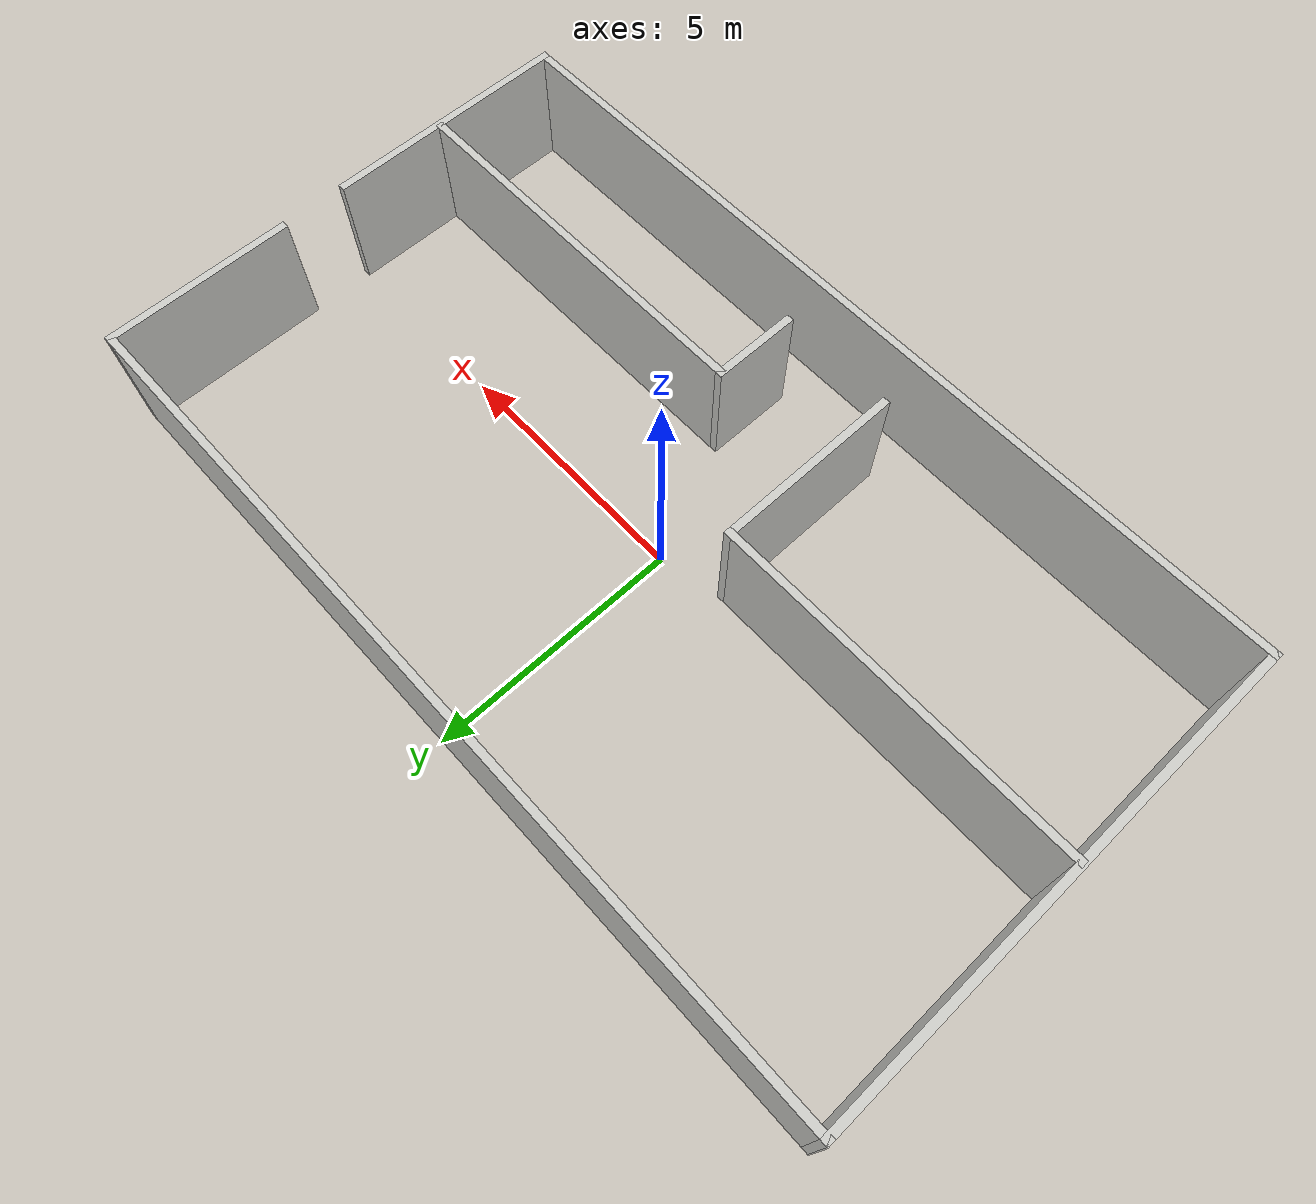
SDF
<?xml version='1.0'?>
<sdf version='1.6'>
  <model name='도면2'>
    <pose frame=''>0.131104 -0.023581 0 0 -0 0</pose>
    <link name='Wall_0'>
      <collision name='Wall_0_Collision'>
        <geometry>
          <box>
            <size>5 0.15 2.5</size>
          </box>
        </geometry>
        <pose frame=''>0 0 1.25 0 -0 0</pose>
      </collision>
      <visual name='Wall_0_Visual'>
        <pose frame=''>0 0 1.25 0 -0 0</pose>
        <geometry>
          <box>
            <size>5 0.15 2.5</size>
          </box>
        </geometry>
        <material>
          <script>
            <uri>file://media/materials/scripts/gazebo.material</uri>
            <name>Gazebo/CeilingTiled</name>
          </script>
          <ambient>1 1 1 1</ambient>
        </material>
        <meta>
          <layer>0</layer>
        </meta>
      </visual>
      <pose frame=''>8.55 -2.5 0 0 -0 -1.5708</pose>
    </link>
    <link name='Wall_1'>
      <collision name='Wall_1_Collision'>
        <geometry>
          <box>
            <size>17.25 0.15 2.5</size>
          </box>
        </geometry>
        <pose frame=''>0 0 1.25 0 -0 0</pose>
      </collision>
      <visual name='Wall_1_Visual'>
        <pose frame=''>0 0 1.25 0 -0 0</pose>
        <geometry>
          <box>
            <size>17.25 0.15 2.5</size>
          </box>
        </geometry>
        <material>
          <script>
            <uri>file://media/materials/scripts/gazebo.material</uri>
            <name>Gazebo/CeilingTiled</name>
          </script>
          <ambient>1 1 1 1</ambient>
        </material>
        <meta>
          <layer>0</layer>
        </meta>
      </visual>
      <pose frame=''>0 -4.925 0 0 -0 3.14159</pose>
    </link>
    <link name='Wall_12'>
      <collision name='Wall_12_Collision'>
        <geometry>
          <box>
            <size>1.75 0.15 2.5</size>
          </box>
        </geometry>
        <pose frame=''>0 0 1.25 0 -0 0</pose>
      </collision>
      <visual name='Wall_12_Visual'>
        <pose frame=''>0 0 1.25 0 -0 0</pose>
        <geometry>
          <box>
            <size>1.75 0.15 2.5</size>
          </box>
        </geometry>
        <material>
          <script>
            <uri>file://media/materials/scripts/gazebo.material</uri>
            <name>Gazebo/CeilingTiled</name>
          </script>
          <ambient>1 1 1 1</ambient>
        </material>
        <meta>
          <layer>0</layer>
        </meta>
      </visual>
      <pose frame=''>0.88103 -3.10948 0 0 -0 1.5708</pose>
    </link>
    <link name='Wall_13'>
      <collision name='Wall_13_Collision'>
        <geometry>
          <box>
            <size>7.75 0.15 2.5</size>
          </box>
        </geometry>
        <pose frame=''>0 0 1.25 0 -0 0</pose>
      </collision>
      <visual name='Wall_13_Visual'>
        <pose frame=''>0 0 1.25 0 -0 0</pose>
        <geometry>
          <box>
            <size>7.75 0.15 2.5</size>
          </box>
        </geometry>
        <material>
          <script>
            <uri>file://media/materials/scripts/gazebo.material</uri>
            <name>Gazebo/CeilingTiled</name>
          </script>
          <ambient>1 1 1 1</ambient>
        </material>
        <meta>
          <layer>0</layer>
        </meta>
      </visual>
      <pose frame=''>4.68103 -2.30949 0 0 -0 0</pose>
    </link>
    <link name='Wall_2'>
      <collision name='Wall_2_Collision'>
        <geometry>
          <box>
            <size>10 0.15 2.5</size>
          </box>
        </geometry>
        <pose frame=''>0 0 1.25 0 -0 0</pose>
      </collision>
      <visual name='Wall_2_Visual'>
        <pose frame=''>0 0 1.25 0 -0 0</pose>
        <geometry>
          <box>
            <size>10 0.15 2.5</size>
          </box>
        </geometry>
        <material>
          <script>
            <uri>file://media/materials/scripts/gazebo.material</uri>
            <name>Gazebo/CeilingTiled</name>
          </script>
          <ambient>1 1 1 1</ambient>
        </material>
        <meta>
          <layer>0</layer>
        </meta>
      </visual>
      <pose frame=''>-8.55 -0 0 0 -0 1.5708</pose>
    </link>
    <link name='Wall_3'>
      <collision name='Wall_3_Collision'>
        <geometry>
          <box>
            <size>17.25 0.15 2.5</size>
          </box>
        </geometry>
        <pose frame=''>0 0 1.25 0 -0 0</pose>
      </collision>
      <visual name='Wall_3_Visual'>
        <pose frame=''>0 0 1.25 0 -0 0</pose>
        <geometry>
          <box>
            <size>17.25 0.15 2.5</size>
          </box>
        </geometry>
        <material>
          <script>
            <uri>file://media/materials/scripts/gazebo.material</uri>
            <name>Gazebo/CeilingTiled</name>
          </script>
          <ambient>1 1 1 1</ambient>
        </material>
        <meta>
          <layer>0</layer>
        </meta>
      </visual>
      <pose frame=''>0 4.925 0 0 -0 0</pose>
    </link>
    <link name='Wall_4'>
      <collision name='Wall_4_Collision'>
        <geometry>
          <box>
            <size>3.75 0.15 2.5</size>
          </box>
        </geometry>
        <pose frame=''>0 0 1.25 0 -0 0</pose>
      </collision>
      <visual name='Wall_4_Visual'>
        <pose frame=''>0 0 1.25 0 -0 0</pose>
        <geometry>
          <box>
            <size>3.75 0.15 2.5</size>
          </box>
        </geometry>
        <material>
          <script>
            <uri>file://media/materials/scripts/gazebo.material</uri>
            <name>Gazebo/CeilingTiled</name>
          </script>
          <ambient>1 1 1 1</ambient>
        </material>
        <meta>
          <layer>0</layer>
        </meta>
      </visual>
      <pose frame=''>8.55 3.125 0 0 -0 -1.5708</pose>
    </link>
    <link name='Wall_6'>
      <collision name='Wall_6_Collision'>
        <geometry>
          <box>
            <size>7.25 0.15 2.5</size>
          </box>
        </geometry>
        <pose frame=''>0 0 1.25 0 -0 0</pose>
      </collision>
      <visual name='Wall_6_Visual'>
        <pose frame=''>0 0 1.25 0 -0 0</pose>
        <geometry>
          <box>
            <size>7.25 0.15 2.5</size>
          </box>
        </geometry>
        <material>
          <script>
            <uri>file://media/materials/scripts/gazebo.material</uri>
            <name>Gazebo/CeilingTiled</name>
          </script>
          <ambient>1 1 1 1</ambient>
        </material>
        <meta>
          <layer>0</layer>
        </meta>
      </visual>
      <pose frame=''>-4.9617 -0.286073 0 0 -0 0</pose>
    </link>
    <link name='Wall_7'>
      <collision name='Wall_7_Collision'>
        <geometry>
          <box>
            <size>3.75 0.15 2.5</size>
          </box>
        </geometry>
        <pose frame=''>0 0 1.25 0 -0 0</pose>
      </collision>
      <visual name='Wall_7_Visual'>
        <pose frame=''>0 0 1.25 0 -0 0</pose>
        <geometry>
          <box>
            <size>3.75 0.15 2.5</size>
          </box>
        </geometry>
        <material>
          <script>
            <uri>file://media/materials/scripts/gazebo.material</uri>
            <name>Gazebo/CeilingTiled</name>
          </script>
          <ambient>1 1 1 1</ambient>
        </material>
        <meta>
          <layer>0</layer>
        </meta>
      </visual>
      <pose frame=''>-1.4117 -2.08607 0 0 -0 -1.5708</pose>
    </link>
    <static>1</static>
  </model>
</sdf>
